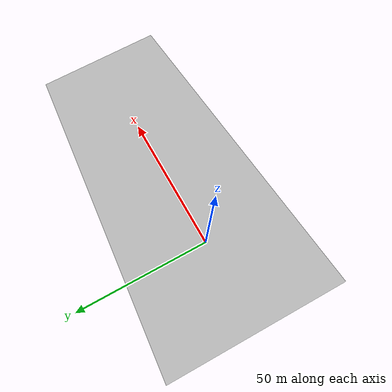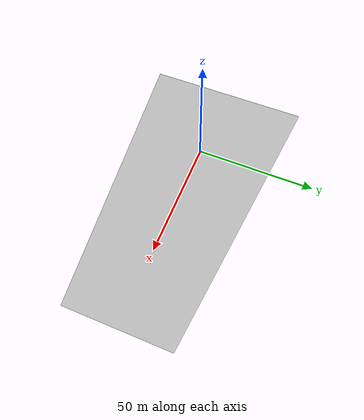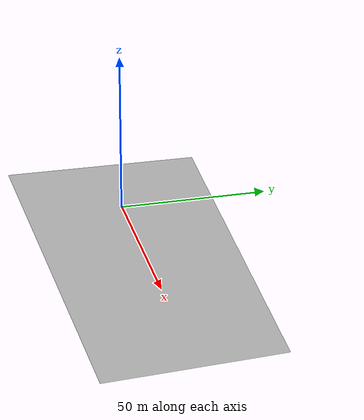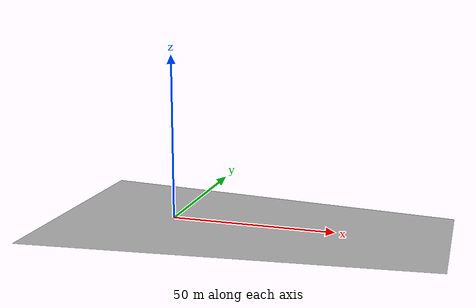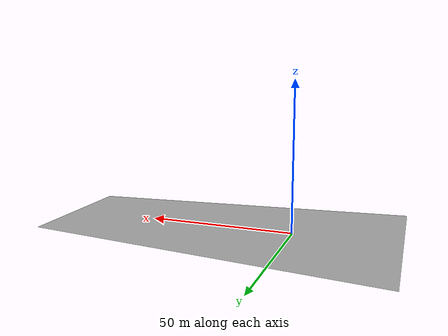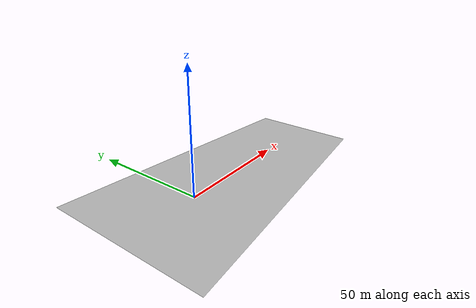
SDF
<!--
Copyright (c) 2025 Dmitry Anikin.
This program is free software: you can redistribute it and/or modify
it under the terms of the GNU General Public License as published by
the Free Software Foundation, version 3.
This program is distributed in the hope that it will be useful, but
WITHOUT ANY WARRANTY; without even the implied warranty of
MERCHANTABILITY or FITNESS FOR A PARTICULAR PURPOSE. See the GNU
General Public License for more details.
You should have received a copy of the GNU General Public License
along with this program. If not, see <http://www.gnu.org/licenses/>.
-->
<?xml version="1.0" ?>

<sdf version="1.5">
  <model name="terrain_1">
    <pose>0 0 0 0 0 0</pose>
    <static>true</static>
    <link name="body">
      <visual name="visual">
        <geometry>
          <mesh><uri>model://model/materials/terrain.dae</uri><scale>1.2 1.2 1.2</scale></mesh>
        </geometry>
	<material>
          <script>
            <uri>model://model/materials/scripts</uri>
            <uri>model://model/materials/textures</uri>
            <name>RepeatedGrass/Diffuse</name>
          </script>
        </material>
      </visual>
      <collision name="collision">
        <geometry>
          <mesh><uri>model://model/materials/terrain.dae</uri><scale>1.2 1.2 1.2</scale></mesh>
        </geometry>
      </collision>
    </link>
  </model>
</sdf>
